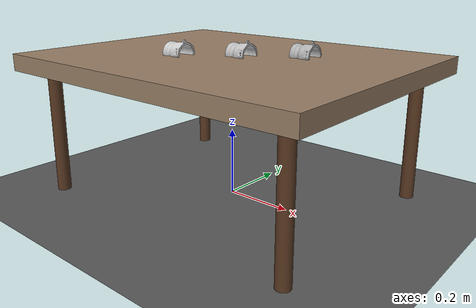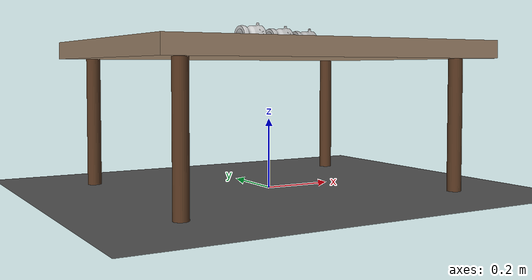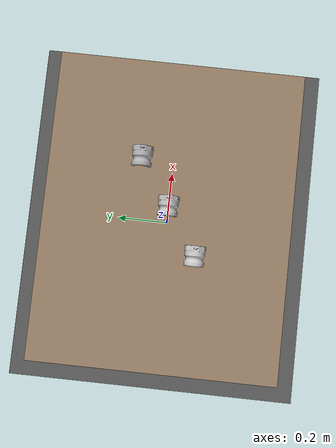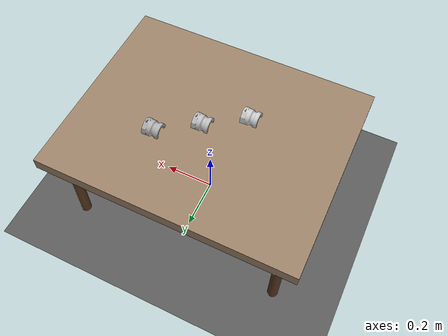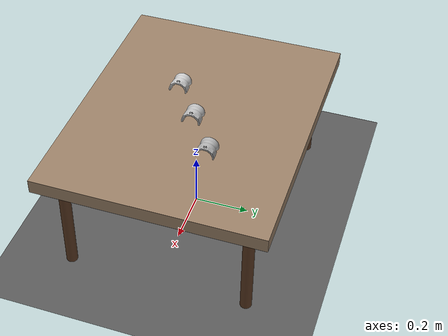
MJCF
<mujoco model="table_with_stl">
  <compiler angle="degree" coordinate="local" />

  <asset>
    <!-- STL mesh — scale 0.001 assumes STL is in mm; adjust if needed -->
    <mesh name="mesh_A" file="../A-200MAOPI.stl" scale="0.001 0.001 0.001" />

    <!-- Table surface texture -->
    <texture name="tex_table" type="2d" builtin="checker" width="512" height="512"
             rgb1="0.55 0.45 0.35" rgb2="0.65 0.55 0.45" />
    <material name="mat_table" texture="tex_table" reflectance="0.05" />

    <!-- Floor texture -->
    <texture name="tex_floor" type="2d" builtin="checker" width="512" height="512"
             rgb1="0.25 0.25 0.25" rgb2="0.45 0.45 0.45" />
    <material name="mat_floor" texture="tex_floor" reflectance="0.1" />
  </asset>

  <worldbody>
    <!-- ── Lighting ──────────────────────────────────────────────────── -->
    <light name="key_light" directional="false"
           pos="2 2 3" dir="0 0 -1"
           diffuse="0.85 0.85 0.85" ambient="0.3 0.3 0.3" specular="0.2 0.2 0.2"
           castshadow="true" />

    <light name="fill_light" directional="false"
           pos="-1 1 2" dir="0 0 -1"
           diffuse="0.4 0.4 0.5" ambient="0.15 0.15 0.2" specular="0.1 0.1 0.1"
           castshadow="false" />

    <!-- ── Floor ─────────────────────────────────────────────────────── -->
    <geom name="floor" type="plane" pos="0 0 0" size="3 3 0.1" material="mat_floor" />

    <!-- ── Table ─────────────────────────────────────────────────────── -->
    <!-- Table top at z=0.4m, dimensions 1.0m x 0.8m x 0.025m -->
    <body name="table" pos="0 0 0">
      <geom name="table_top" type="box" pos="0 0 0.4" size="0.5 0.4 0.025"
            material="mat_table" />
      <!-- Four legs -->
      <geom name="leg_front_left" type="cylinder" pos="-0.42 -0.32 0.2" size="0.02 0.2"
            rgba="0.35 0.22 0.13 1" />
      <geom name="leg_front_right" type="cylinder" pos="0.42 -0.32 0.2" size="0.02 0.2"
            rgba="0.35 0.22 0.13 1" />
      <geom name="leg_back_left" type="cylinder" pos="-0.42 0.32 0.2" size="0.02 0.2"
            rgba="0.35 0.22 0.13 1" />
      <geom name="leg_back_right" type="cylinder" pos="0.42 0.32 0.2" size="0.02 0.2"
            rgba="0.35 0.22 0.13 1" />
    </body>

    <!-- ── STL Objects (1-3 randomly placed by PlacementRandomizer) ──── -->
    <!-- Object 1 -->
    <body name="obj_1" pos="0.0 0.0 0.43">
      <geom name="obj_1_geom" type="mesh" mesh="mesh_A"
            rgba="0.75 0.75 0.75 1" />
    </body>

    <!-- Object 2 -->
    <body name="obj_2" pos="0.15 0.1 0.43">
      <geom name="obj_2_geom" type="mesh" mesh="mesh_A"
            rgba="0.7 0.7 0.7 1" />
    </body>

    <!-- Object 3 -->
    <body name="obj_3" pos="-0.15 -0.1 0.43">
      <geom name="obj_3_geom" type="mesh" mesh="mesh_A"
            rgba="0.8 0.8 0.8 1" />
    </body>

    <!-- ── Cameras ────────────────────────────────────────────────────── -->
    <camera name="cam_front" mode="fixed"
            pos="0 1.2 1.0" quat="0.55 0.45 0.45 0.55"
            fovy="50" />

    <camera name="cam_top" mode="fixed"
            pos="0 0 2.5" quat="0.707 0.707 0 0"
            fovy="45" />

    <camera name="cam_side" mode="fixed"
            pos="1.5 0 0.8" quat="0.5 0.5 0.5 0.5"
            fovy="50" />

  </worldbody>

</mujoco>
